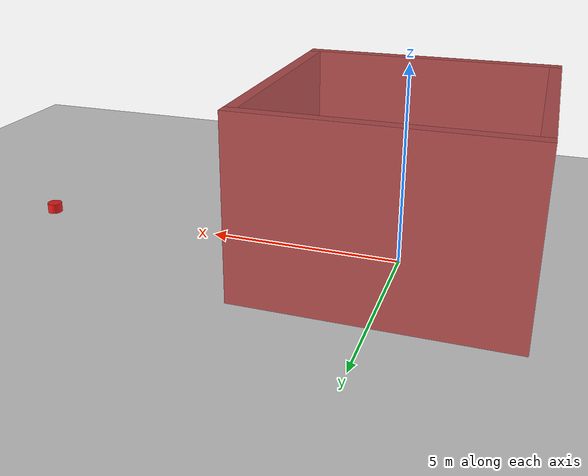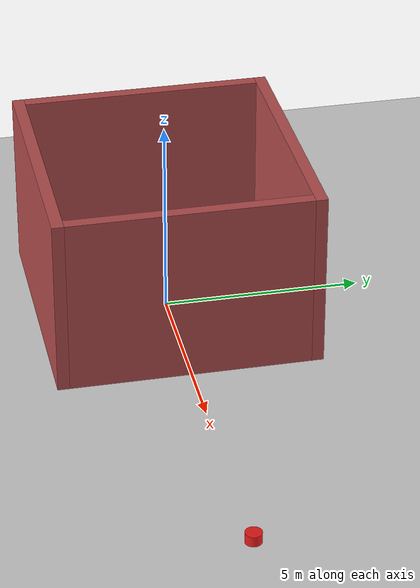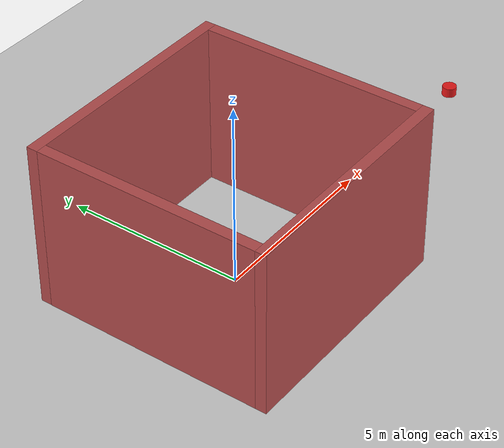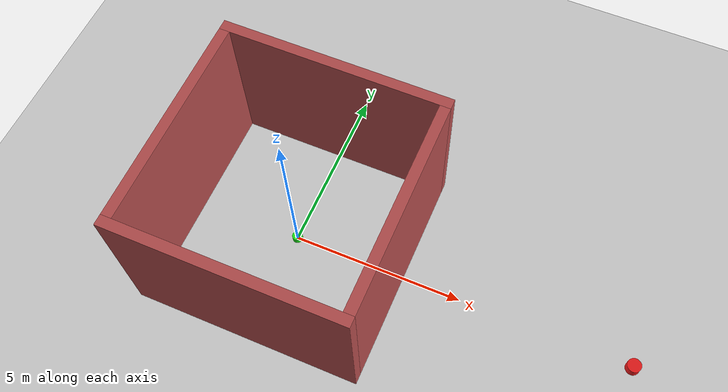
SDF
<?xml version="1.0" ?>
<sdf version="1.6">
  <world name="cage_trap">

    <physics type="ode">
      <max_step_size>0.001</max_step_size>
      <real_time_factor>1.0</real_time_factor>
      <real_time_update_rate>1000</real_time_update_rate>
      <gravity>0 0 -9.81</gravity>
      <ode>
        <solver><type>quick</type><iters>50</iters><sor>1.3</sor></solver>
        <constraints>
          <cfm>0.0</cfm><erp>0.2</erp>
          <contact_max_correcting_vel>100.0</contact_max_correcting_vel>
          <contact_surface_layer>0.001</contact_surface_layer>
        </constraints>
      </ode>
    </physics>

    <scene>
      <ambient>0.5 0.5 0.5 1.0</ambient>
      <shadows>false</shadows>
      <grid>false</grid>
    </scene>

    <include><uri>model://sun</uri></include>
    <include><uri>model://ground_plane</uri></include>

    <!-- North wall: y=+3, spanning x=-3.15 to x=3.15 -->
    <model name="wall_north">
      <static>true</static>
      <pose>0 3.15 2.25 0 0 0</pose>
      <link name="link">
        <collision name="collision">
          <geometry><box><size>6.6 0.3 4.5</size></box></geometry>
        </collision>
        <visual name="visual">
          <geometry><box><size>6.6 0.3 4.5</size></box></geometry>
          <material>
            <ambient>0.7 0.3 0.3 1.0</ambient>
            <diffuse>0.7 0.3 0.3 1.0</diffuse>
          </material>
        </visual>
      </link>
    </model>

    <!-- South wall: y=-3 -->
    <model name="wall_south">
      <static>true</static>
      <pose>0 -3.15 2.25 0 0 0</pose>
      <link name="link">
        <collision name="collision">
          <geometry><box><size>6.6 0.3 4.5</size></box></geometry>
        </collision>
        <visual name="visual">
          <geometry><box><size>6.6 0.3 4.5</size></box></geometry>
          <material>
            <ambient>0.7 0.3 0.3 1.0</ambient>
            <diffuse>0.7 0.3 0.3 1.0</diffuse>
          </material>
        </visual>
      </link>
    </model>

    <!-- East wall: x=+3, spanning y=-3 to y=3 -->
    <model name="wall_east">
      <static>true</static>
      <pose>3.15 0 2.25 0 0 0</pose>
      <link name="link">
        <collision name="collision">
          <geometry><box><size>0.3 6.0 4.5</size></box></geometry>
        </collision>
        <visual name="visual">
          <geometry><box><size>0.3 6.0 4.5</size></box></geometry>
          <material>
            <ambient>0.7 0.3 0.3 1.0</ambient>
            <diffuse>0.7 0.3 0.3 1.0</diffuse>
          </material>
        </visual>
      </link>
    </model>

    <!-- West wall: x=-3 -->
    <model name="wall_west">
      <static>true</static>
      <pose>-3.15 0 2.25 0 0 0</pose>
      <link name="link">
        <collision name="collision">
          <geometry><box><size>0.3 6.0 4.5</size></box></geometry>
        </collision>
        <visual name="visual">
          <geometry><box><size>0.3 6.0 4.5</size></box></geometry>
          <material>
            <ambient>0.7 0.3 0.3 1.0</ambient>
            <diffuse>0.7 0.3 0.3 1.0</diffuse>
          </material>
        </visual>
      </link>
    </model>

    <!-- Marker at drone spawn point -->
    <model name="marker_spawn"><static>true</static><pose>0 0 0 0 0 0</pose>
      <link name="link">
        <collision name="c"><geometry><cylinder><radius>0.15</radius><length>0.3</length></cylinder></geometry></collision>
        <visual name="v"><geometry><cylinder><radius>0.15</radius><length>0.3</length></cylinder></geometry>
          <material><ambient>0.1 0.9 0.1 1</ambient><diffuse>0.1 0.9 0.1 1</diffuse></material></visual>
      </link></model>

    <!-- Marker outside cage (goal reference) -->
    <model name="marker_goal"><static>true</static><pose>10 0 0 0 0 0</pose>
      <link name="link">
        <collision name="c"><geometry><cylinder><radius>0.2</radius><length>0.5</length></cylinder></geometry></collision>
        <visual name="v"><geometry><cylinder><radius>0.2</radius><length>0.5</length></cylinder></geometry>
          <material><ambient>0.9 0.1 0.1 1</ambient><diffuse>0.9 0.1 0.1 1</diffuse></material></visual>
      </link></model>

  </world>
</sdf>
